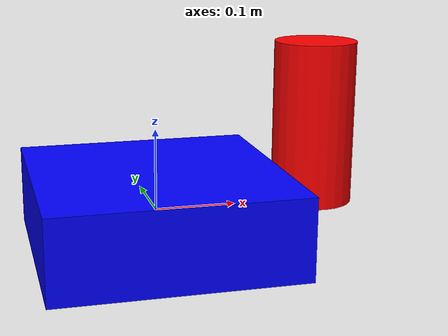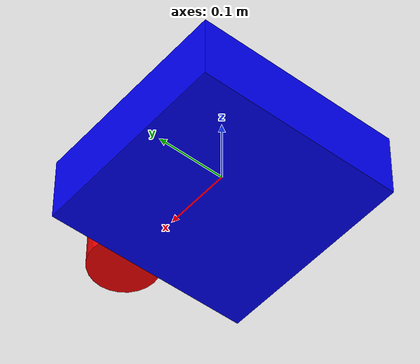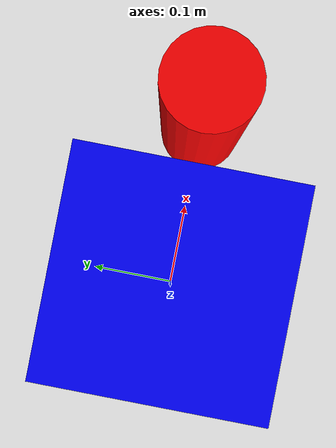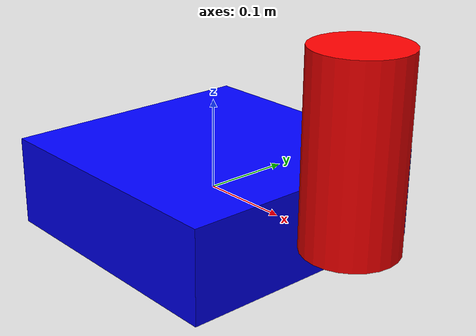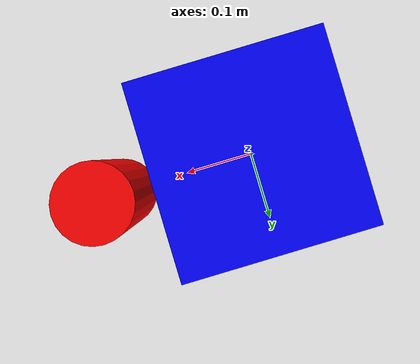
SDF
<?xml version="1.0"?>
<sdf version="1.7">
    <model name="mybot_control_host">
        <link name="base_link">
            <pose>0 0 0 0 0 0</pose>
            <inertial>
                <mass>1.0</mass>
                <inertia>
                    <ixx>0.01</ixx>
                    <iyy>0.01</iyy>
                    <izz>0.01</izz>
                </inertia>
            </inertial>
            <visual name="base_vis">
                <geometry>
                    <box>
                        <size>0.3 0.3 0.1</size>
                    </box>
                </geometry>
                <material>
                    <ambient>0 0 1 1</ambient>
                </material>
            </visual>
        </link>

        <link name="child_link">
            <pose>0.2 0 0.1 0 0 0</pose>
            <inertial>
                <mass>0.5</mass>
                <inertia>
                    <ixx>0.005</ixx>
                    <iyy>0.005</iyy>
                    <izz>0.005</izz>
                </inertia>
            </inertial>
            <visual name="child_vis">
                <geometry>
                    <cylinder>
                        <radius>0.05</radius>
                        <length>0.2</length>
                    </cylinder>
                </geometry>
                <material>
                    <ambient>1 0 0 1</ambient>
                </material>
            </visual>
        </link>

        <joint name="base_to_child" type="fixed">
            <parent>base_link</parent>
            <child>child_link</child>
        </joint>

        <plugin name="ign_ros2_control::IgnitionROS2ControlPlugin" filename="libign_ros2_control-system.so">
        </plugin>
    </model>
</sdf>
